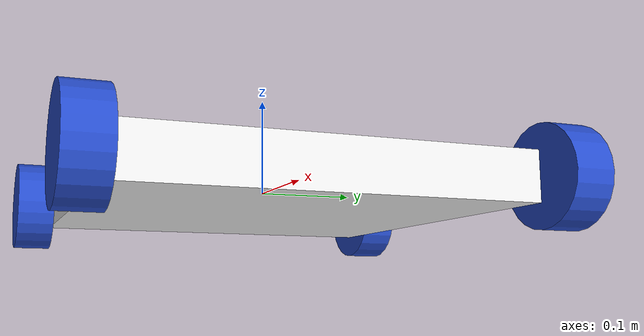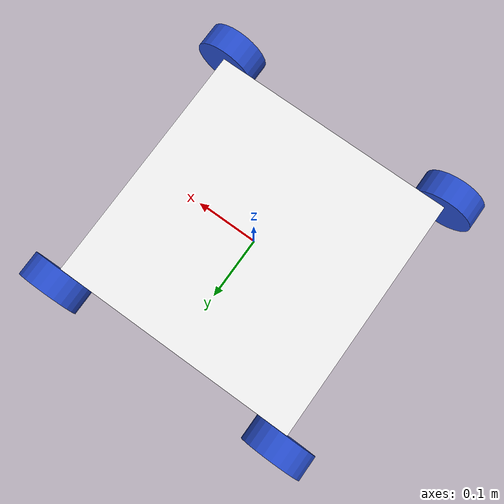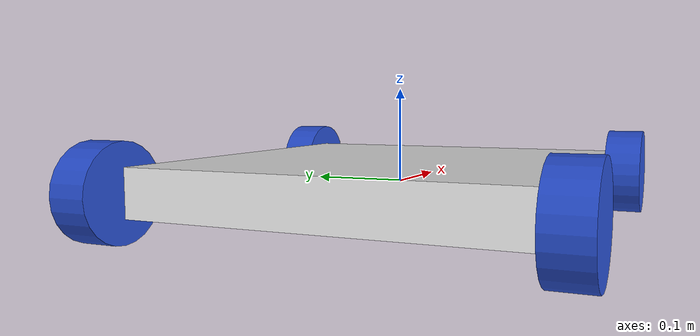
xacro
<?xml version="1.0"?>
<robot xmlns:xacro="http://www.ros.org/wiki/xacro">

    <xacro:include filename="inertial_macros.xacro"/>

    <xacro:property name="rad_w" value="0.05"/>
    <xacro:property name="le_w" value="0.04"/>
    <xacro:property name="ly" value="0.4"/>
    <xacro:property name="lx" value="0.4"/>
    <xacro:property name="lz" value="0.05"/>

    <link name="base_link"></link>

    <joint name="base_link_joint" type="fixed">
        <parent link="base_link"/>
        <child link="chassis"/>
        <origin xyz="0 0 0"/>
    </joint>

    <link name="chassis">
        <visual>
            <geometry><box size="${lx} ${ly} ${lz}"/></geometry>
            <material name="white"/>
        </visual>
        <collision>
            <geometry><box size="${lx} ${ly} ${lz}"/></geometry>
        </collision>
        <xacro:inertial_box mass="5.0" x="${lx}" y="${ly}" z="${lz}">
            <origin xyz="0 0 0" rpy="0 0 0"/>
        </xacro:inertial_box>
    </link>
    <!-- REAR WHEELS (Traction) -->
    <joint name="rear_left_wheel_joint" type="continuous">
        <parent link="chassis"/>
        <child link="rear_left_wheel"/>
        <origin xyz="${-lx/2} ${ly/2+le_w/2} 0.0" rpy="-${pi/2} 0 0"/>
        <axis xyz="0 0 1"/>
    </joint>
    <link name="rear_left_wheel">
        <visual><geometry><cylinder radius="${rad_w}" length="${le_w}"/></geometry><material name="blue"/></visual>
        <collision><geometry><sphere radius="${rad_w}" /></geometry></collision>
        <xacro:inertial_cylinder mass="0.1" length="${le_w}" radius="${rad_w}"><origin xyz="0 0 0" rpy="0 0 0"/></xacro:inertial_cylinder>
    </link>
    <joint name="rear_right_wheel_joint" type="continuous">
        <parent link="chassis"/>
        <child link="rear_right_wheel"/>
        <origin xyz="${-lx/2} -${ly/2+le_w/2} 0.0" rpy="${pi/2} 0 0"/>
        <axis xyz="0 0 -1"/>
    </joint>
    <link name="rear_right_wheel">
        <visual><geometry><cylinder radius="${rad_w}" length="${le_w}"/></geometry><material name="blue"/></visual>
        <collision><geometry><sphere radius="${rad_w}" /></geometry></collision>
        <xacro:inertial_cylinder mass="0.1" length="${le_w}" radius="${rad_w}"><origin xyz="0 0 0" rpy="0 0 0"/></xacro:inertial_cylinder>
    </link>
    <!-- FRONT STEERING KNUCKLES -->
    <joint name="front_left_steer_joint" type="revolute">
        <parent link="chassis"/>
        <child link="front_left_steer_link"/>
        <origin xyz="${lx/2} ${ly/2} 0.0" rpy="0 0 0"/>
        <axis xyz="0 0 1"/>
        <limit lower="-0.6" upper="0.6" effort="10.0" velocity="2.0"/>
    </joint>
    <link name="front_left_steer_link">
        <xacro:inertial_cylinder mass="0.05" length="0.01" radius="0.02"><origin xyz="0 0 0" rpy="0 0 0"/></xacro:inertial_cylinder>
    </link>
    <joint name="front_right_steer_joint" type="revolute">
        <parent link="chassis"/>
        <child link="front_right_steer_link"/>
        <origin xyz="${lx/2} -${ly/2} 0.0" rpy="0 0 0"/>
        <axis xyz="0 0 1"/>
        <limit lower="-0.6" upper="0.6" effort="10.0" velocity="2.0"/>
    </joint>
    <link name="front_right_steer_link">
        <xacro:inertial_cylinder mass="0.05" length="0.01" radius="0.02"><origin xyz="0 0 0" rpy="0 0 0"/></xacro:inertial_cylinder>
    </link>
    <!-- FRONT WHEELS -->
    <joint name="front_left_wheel_joint" type="continuous">
        <parent link="front_left_steer_link"/>
        <child link="front_left_wheel"/>
        <origin xyz="0 ${le_w/2} 0.0" rpy="-${pi/2} 0 0"/>
        <axis xyz="0 0 1"/>
    </joint>
    <link name="front_left_wheel">
        <visual><geometry><cylinder radius="${rad_w}" length="${le_w}"/></geometry><material name="blue"/></visual>
        <collision><geometry><sphere radius="${rad_w}"/></geometry></collision>
        <xacro:inertial_cylinder mass="0.1" length="${le_w}" radius="${rad_w}"><origin xyz="0 0 0" rpy="0 0 0"/></xacro:inertial_cylinder>
    </link>
    <joint name="front_right_wheel_joint" type="continuous">
        <parent link="front_right_steer_link"/>
        <child link="front_right_wheel"/>
        <origin xyz="0 -${le_w/2} 0.0" rpy="${pi/2} 0 0"/>
        <axis xyz="0 0 -1"/>
    </joint>
    <link name="front_right_wheel">
        <visual><geometry><cylinder radius="${rad_w}" length="${le_w}"/></geometry><material name="blue"/></visual>
        <collision><geometry><sphere radius="${rad_w}"/></geometry></collision>
        <xacro:inertial_cylinder mass="0.1" length="${le_w}" radius="${rad_w}"><origin xyz="0 0 0" rpy="0 0 0"/></xacro:inertial_cylinder>
    </link>
</robot>
